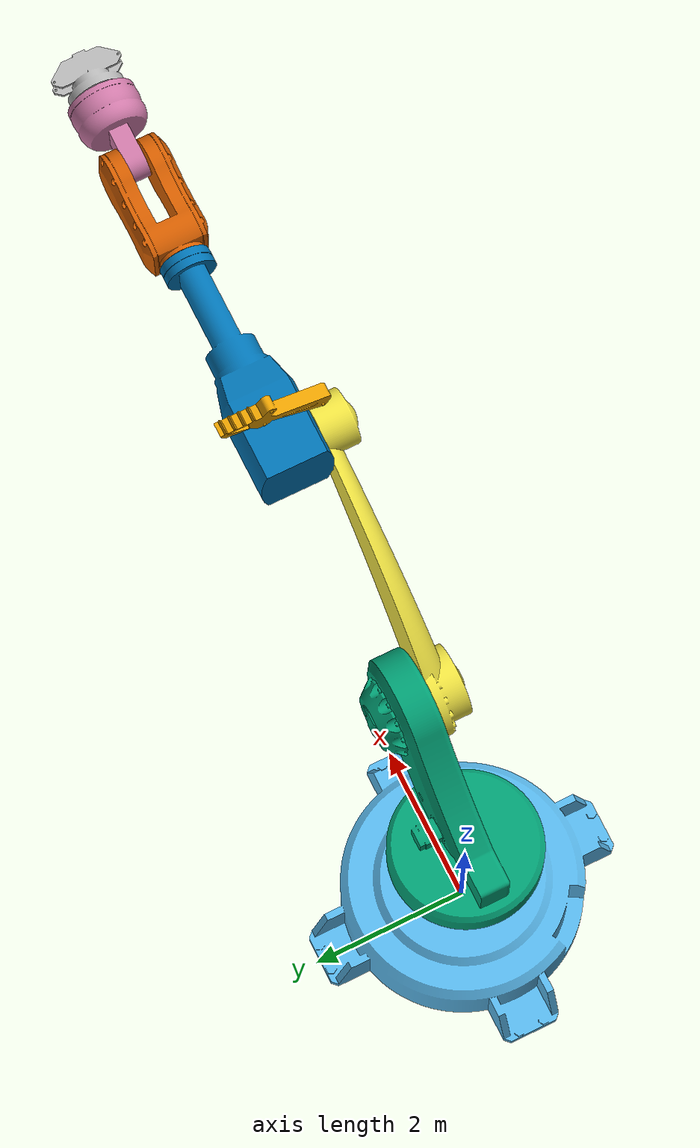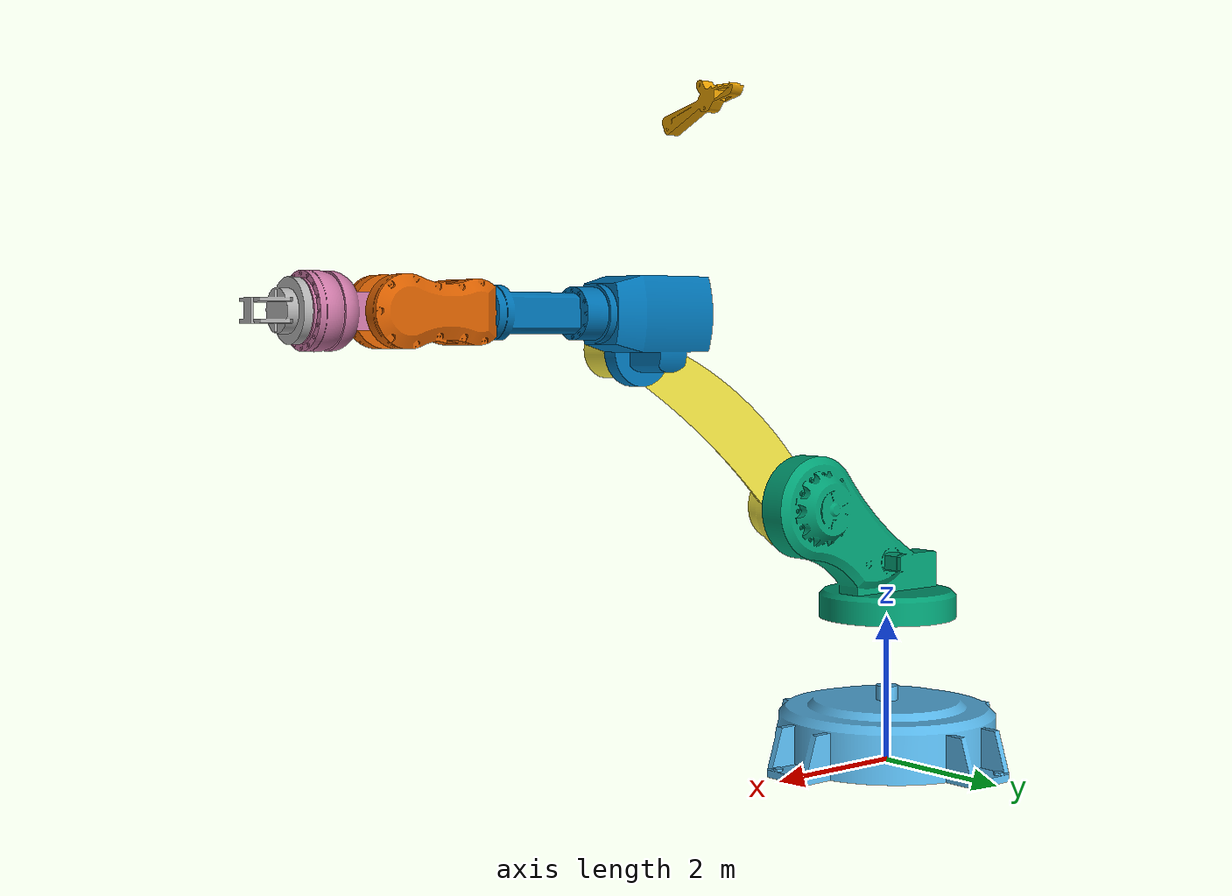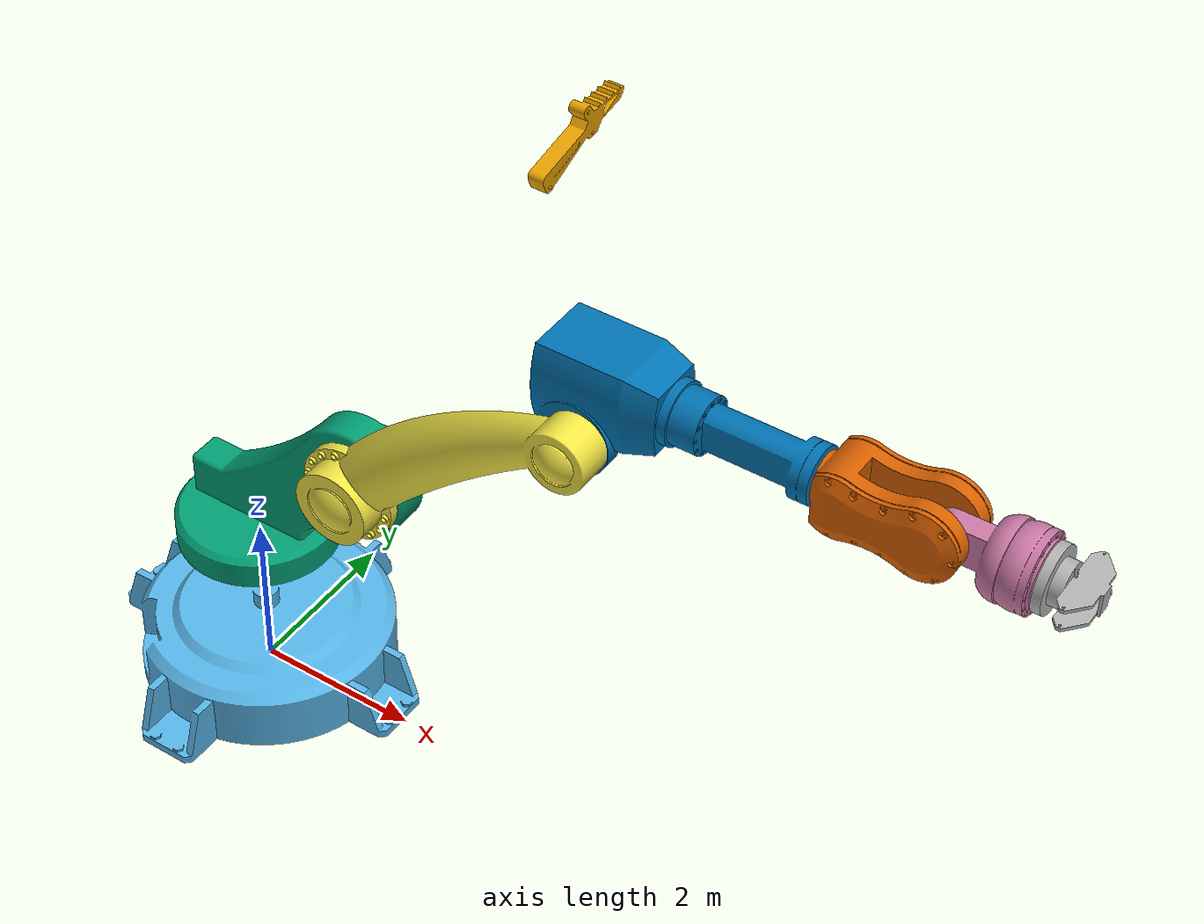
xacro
<?xml version="1.0"?>

<robot xmlns:xacro="http://www.ros.org/wiki/xacro" name="faraday_arm">

    <xacro:property name="PI" value="3.1415926535897932384626433832795"/>

    <link name="world"/>

    <link name="base_link">
        <visual>
            <origin xyz="0.0 0.0 0.0" rpy="0.0 0.0 0.0"/>
            <geometry>
                <mesh filename="package://faraday_description/meshes/base.stl" scale="0.01 0.01 0.01"/>
            </geometry>
        </visual>
    </link>

    <joint name="virtual_joint" type="fixed">
        <parent link="world"/>
        <child link="base_link"/>
        <origin xyz="0.0 0.0 0.0" rpy="0.0 0.0 0.0"/>
    </joint>

    <link name="base_plate">
        <visual>
            <origin xyz="0.0 0.0 0.0" rpy="0.0 0.0 0.0"/>
            <geometry>
                <mesh filename="package://faraday_description/meshes/jaw.stl" scale="0.01 0.01 0.01"/>
            </geometry>
        </visual>
    </link>

    <joint name="joint_1" type="revolute">
        <parent link="base_link"/>
        <child link="base_plate"/>
        <origin xyz="0.0 0.0 2.0" rpy="0.0 0.0 0.0"/>
        <axis xyz="0 0 1"/>
        <limit lower="-${PI/2}" upper="${PI/2}" effort="10" velocity="1"/>
    </joint>
    <link name="jaw_2">
        <visual>
            <origin xyz="${PI/2} -0.4 0.2" rpy="0 0 -2.5"/>
            <geometry>
                <mesh filename="package://faraday_description/meshes/jaw 2.stl" scale="0.01 0.01 0.01"/>
            </geometry>
        </visual>
    </link>

    <joint name="joint_2" type="revolute">
        <parent link="base_plate"/>
        <child link="jaw_2"/>
        <origin xyz="0.0 0.0 2.0" rpy="${PI/2} 0.0 0.0"/>
        <axis xyz="0 0 1"/>
        <limit lower="-${PI/2}" upper="${PI/2}" effort="10" velocity="1"/>
    </joint>

    <link name="jaw_3">
        <visual>
            <origin xyz="0.0 0.0 0.0" rpy="-${PI/2} 0.0 0.0"/>
            <geometry>
                <mesh filename="package://faraday_description/meshes/jaw3.stl" scale="0.01 0.01 0.01"/>
            </geometry>
        </visual>
    </link>

    <joint name="joint_3" type="revolute">
        <parent link="jaw_2"/>
        <child link="jaw_3"/>
        <origin xyz="3.8 2.122385 -0.291650" rpy="0.0 0.0 0.0"/>
        <axis xyz="0 0 1"/>
        <limit lower="-${PI/2}" upper="${PI/2}" effort="10" velocity="1"/>
    </joint>

    <link name="jaw_4">
        <visual>
            <origin xyz="2.979 0.0 0.0" rpy="-${PI/2} 0.0 0.0"/>
            <geometry>
                <mesh filename="package://faraday_description/meshes/jaw4.stl" scale="0.01 0.01 0.01"/>
            </geometry>
        </visual>
    </link>

    <joint name="joint_4" type="revolute">
        <parent link="jaw_3"/>
        <child link="jaw_4"/>
        <origin xyz="0.0 0.0 0.0" rpy="0.0 0.0 0.0"/>
        <axis xyz="0.0 0.0 0.0"/>
        <limit lower="-${PI/2}" upper="${PI/2}" effort="10" velocity="1"/>
    </joint>

    <link name="jaw_5">
        <visual>
            <origin xyz="4.716 0.0 0.0" rpy="0.0 ${PI/2} ${PI/2}"/>
            <geometry>
                <mesh filename="package://faraday_description/meshes/jaw5.stl" scale="0.01 0.01 0.01"/>
            </geometry>
        </visual>
    </link>

    <joint name="joint_5" type="revolute">
        <parent link="jaw_4"/>
        <child link="jaw_5"/>
        <origin xyz="0.0 0.0 0.0" rpy="0.0 0.0 0.0"/>
        <axis xyz="0.0 0.0 0.0"/>
        <limit lower="-${PI/2}" upper="${PI/2}" effort="10" velocity="1"/>
    </joint>

    <link name="jaw_6">
        <visual>
            <origin xyz="5.25 0.0 0.0" rpy="0.0 ${PI/2} -${PI/2}"/>
            <geometry>
                <mesh filename="package://faraday_description/meshes/jaw6.stl" scale="0.01 0.01 0.01"/>
            </geometry>
        </visual>
    </link>

    <joint name="joint_6" type="revolute">
        <parent link="jaw_5"/>
        <child link="jaw_6"/>
        <origin xyz="0.0 0.0 0.0" rpy="0.0 0.0 0.0"/>
        <axis xyz="0.0 0.0 0.0"/>
        <limit lower="-${PI/2}" upper="${PI/2}" effort="10" velocity="1"/>
    </joint>

    <link name="jaw_7">
        <visual>
            <origin xyz="0.0 0.0 0.0" rpy="0.0 0.0 0.0"/>
            <geometry>
                <mesh filename="package://faraday_description/meshes/jaws7.stl" scale="0.01 0.01 0.01"/>
            </geometry>
        </visual>
    </link>

    <joint name="joint_7" type="revolute">
        <parent link="jaw_6"/>
        <child link="jaw_7"/>
        <origin xyz="0.0 0.0 0.0" rpy="0.0 0.0 0.0"/>
        <axis xyz="0.0 0.0 0.0"/>
        <limit lower="-${PI/2}" upper="${PI/2}" effort="10" velocity="1"/>

    </joint>

</robot>
